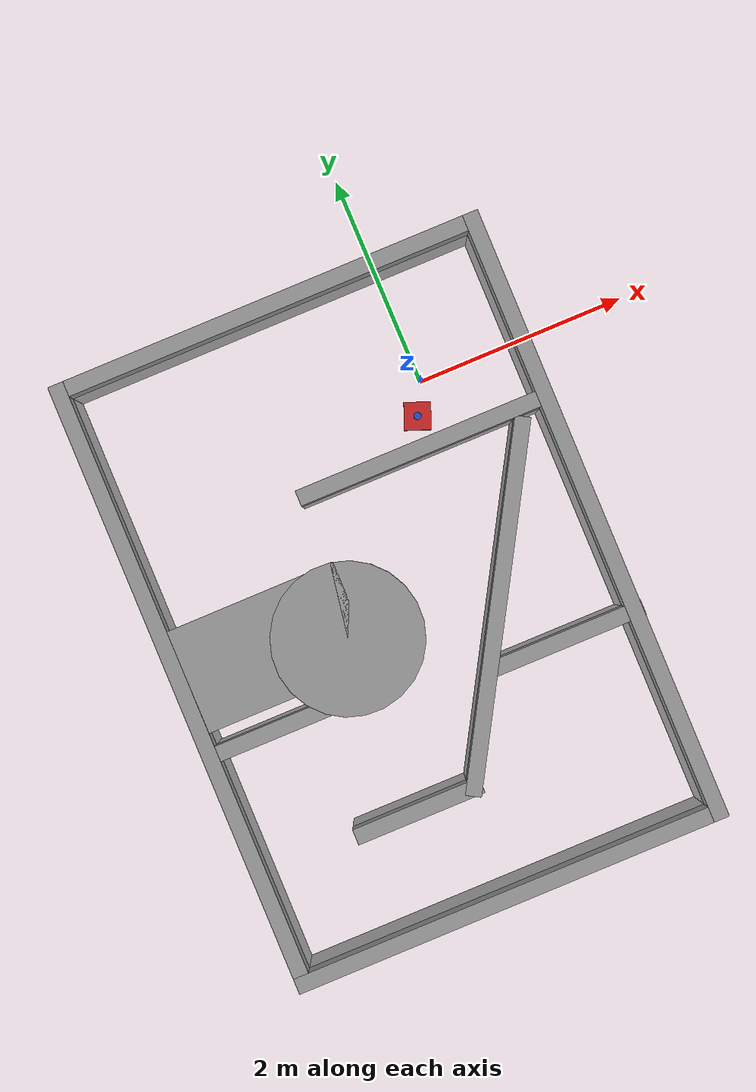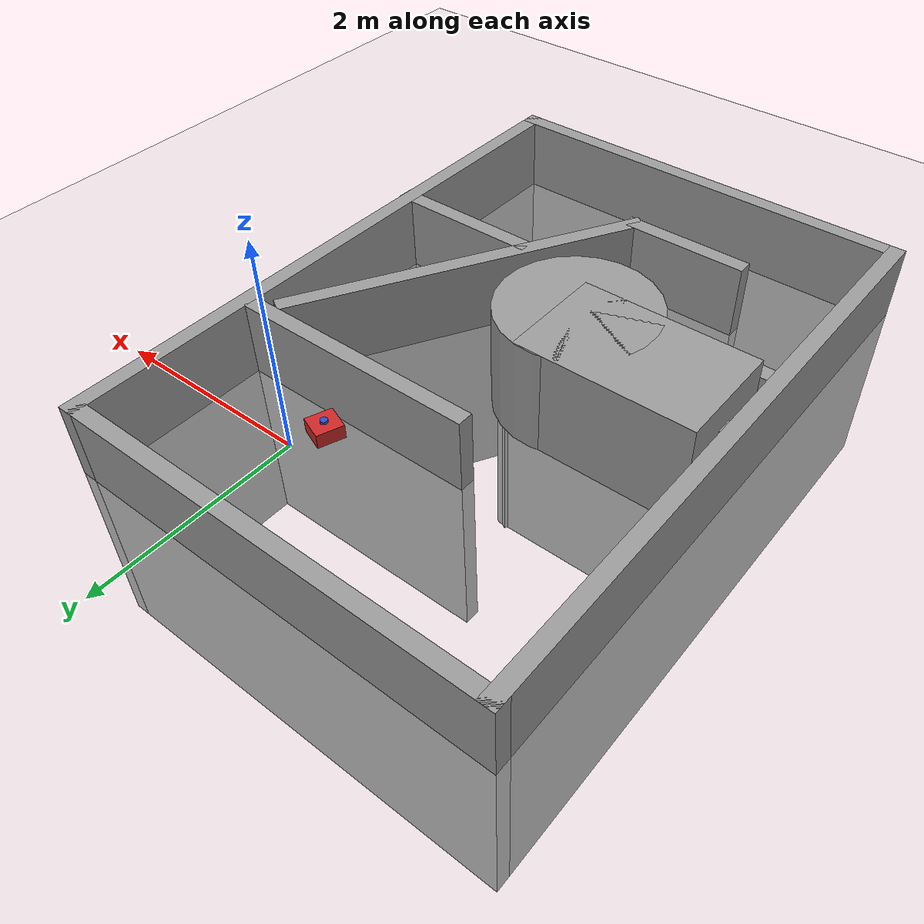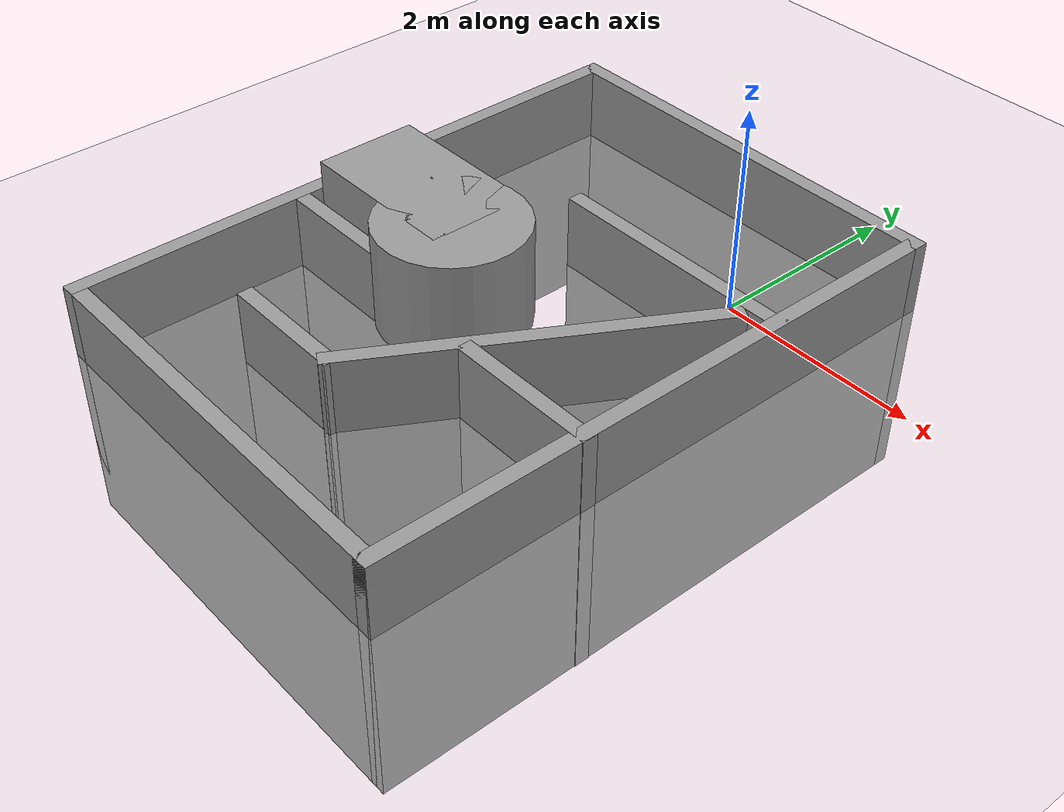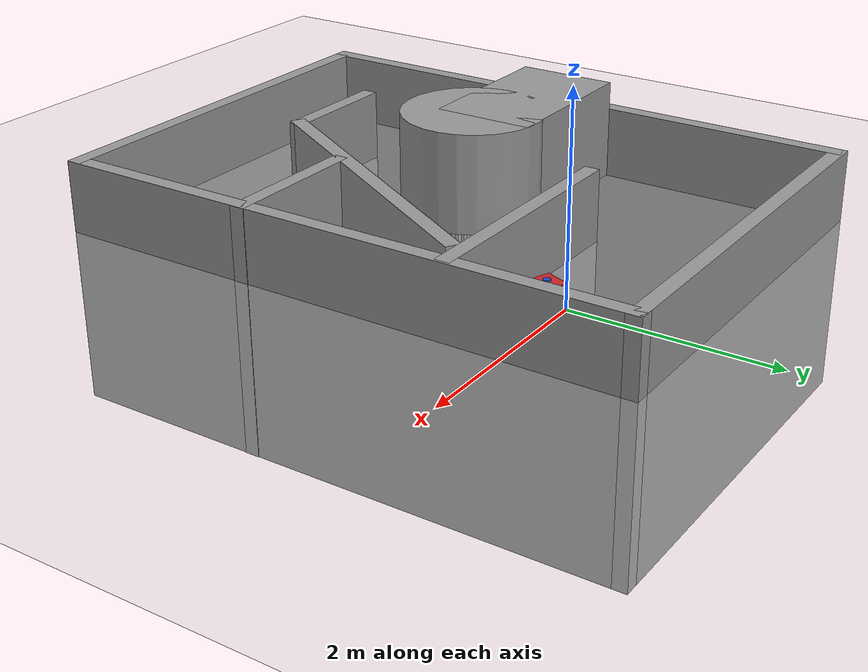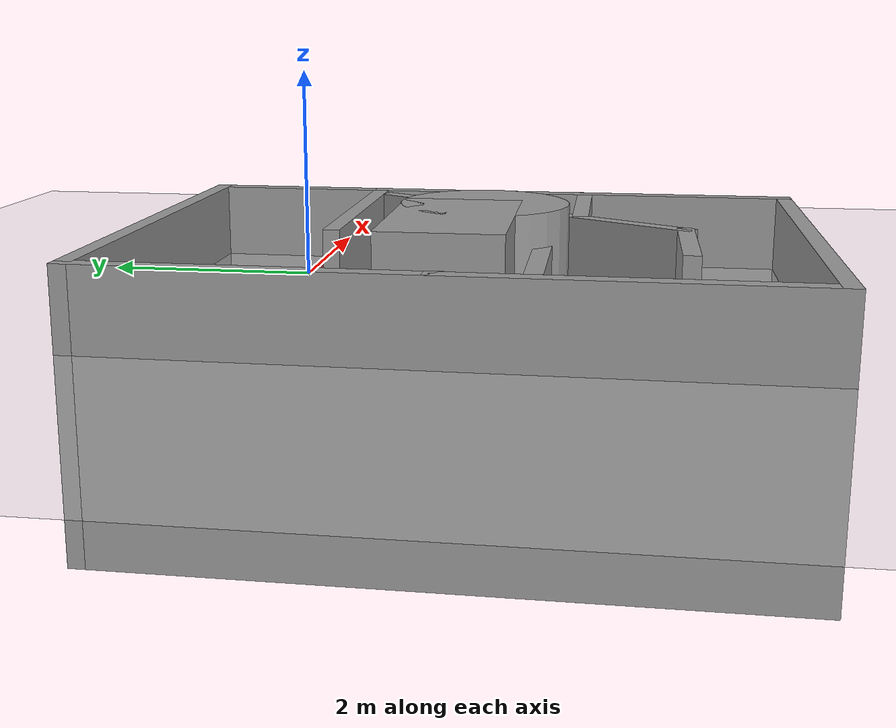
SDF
<sdf version="1.7">
 <world name="default">
  <plugin name="gazebo_ros_state" filename="libgazebo_ros_state.so"/>
  <light name="sun" type="directional">
   <pose>0 0 10 0 -0 0</pose>
   <diffuse>0.8 0.8 0.8 1</diffuse>
   <specular>0.2 0.2 0.2 1</specular>
   <attenuation>
    <range>1000</range>
    <constant>0.9</constant>
    <linear>0.01</linear>
    <quadratic>0.001</quadratic>
   </attenuation>
   <direction>-0.5 0.1 -0.9</direction>
   <spot><inner_angle>0</inner_angle><outer_angle>0</outer_angle><falloff>0</falloff></spot>
  </light>
  <model name="ground_plane">
   <static>1</static>
   <link name="link">
    <collision name="collision">
     <geometry><plane><normal>0 0 1</normal><size>100 100</size></plane></geometry>
     <surface>
      <contact><collide_bitmask>65535</collide_bitmask></contact>
      <friction><ode><mu>100</mu><mu2>50</mu2></ode></friction>
     </surface>
    </collision>
    <visual name="visual">
     <cast_shadows>0</cast_shadows>
     <geometry><plane><normal>0 0 1</normal><size>100 100</size></plane></geometry>
     <material>
      <script><uri>file://media/materials/scripts/gazebo.material</uri><name>Gazebo/Grey</name></script>
     </material>
    </visual>
   </link>
  </model>
  <gravity>0 0 -9.8</gravity>
  <magnetic_field>6e-06 2.3e-05 -4.2e-05</magnetic_field>
  <atmosphere type="adiabatic"/>
  <physics type="ode">
   <max_step_size>0.001</max_step_size>
   <real_time_factor>1</real_time_factor>
   <real_time_update_rate>1000</real_time_update_rate>
  </physics>
  <scene><ambient>0.4 0.4 0.4 1</ambient><background>0.7 0.7 0.7 1</background><shadows>1</shadows></scene>
  <audio><device>default</device></audio>
  <spherical_coordinates>
   <surface_model>EARTH_WGS84</surface_model>
   <latitude_deg>0</latitude_deg>
   <longitude_deg>0</longitude_deg>
   <elevation>0</elevation>
   <heading_deg>0</heading_deg>
  </spherical_coordinates>
  <model name="omnibot">
   <link name="base_link">
    <inertial>
     <pose>0 0 0.085583 0 -0 0</pose>
     <mass>0.6</mass>
     <inertia>
      <ixx>0.00273319</ixx>
      <ixy>0</ixy>
      <ixz>0</ixz>
      <iyy>0.00539319</iyy>
      <iyz>0</iyz>
      <izz>0.00627633</izz>
     </inertia>
    </inertial>
    <collision name="base_link_collision">
     <pose>0 0 0.072 0 -0 0</pose>
     <geometry><box><size>0.26 0.25 0.14</size></box></geometry>
    </collision>
    <collision name="base_link_fixed_joint_lump__base_laser_collision_1">
     <pose>0 0 0.1535 0 -0 0</pose>
     <geometry><cylinder><length>0.027</length><radius>0.035</radius></cylinder></geometry>
    </collision>
    <visual name="base_link_visual">
     <pose>0 0 0.072 0 -0 0</pose>
     <geometry><box><size>0.26 0.25 0.14</size></box></geometry>
     <material>
      <script><name>Gazebo/Red</name><uri>file://media/materials/scripts/gazebo.material</uri></script>
     </material>
    </visual>
    <visual name="base_link_fixed_joint_lump__base_laser_visual_1">
     <pose>0 0 0.1535 0 -0 0</pose>
     <geometry><cylinder><length>0.027</length><radius>0.035</radius></cylinder></geometry>
     <material>
      <script><name>Gazebo/Blue</name><uri>file://media/materials/scripts/gazebo.material</uri></script>
     </material>
    </visual>
    <sensor name="base_laser" type="ray">
     <visualize>0</visualize>
     <update_rate>10</update_rate>
     <ray>
      <scan>
       <horizontal>
        <samples>360</samples>
        <resolution>1</resolution>
        <min_angle>-3.14159</min_angle>
        <max_angle>3.14159</max_angle>
       </horizontal>
       <vertical><samples>1</samples><min_angle>0</min_angle><max_angle>0</max_angle></vertical>
      </scan>
      <range><min>0.15</min><max>12</max><resolution>0.01</resolution></range>
     </ray>
     <plugin name="base_laser_controller" filename="libgazebo_ros_ray_sensor.so">
      <ros><argument>~/out:=scan</argument></ros>
      <output_type>sensor_msgs/LaserScan</output_type>
      <frameName>base_laser</frameName>
     </plugin>
     <pose>0 0 0.1535 0 -0 0</pose>
    </sensor>
   </link>
   <static>0</static>
   <plugin name="gazebo_ros_control" filename="libgazebo_ros_planar_move.so">
    <commandTopic>cmd_vel</commandTopic>
    <odometryTopic>odom</odometryTopic>
    <odometryFrame>odom</odometryFrame>
    <odometryRate>20.0</odometryRate>
    <robotBaseFrame>base_footprint</robotBaseFrame>
   </plugin>
   <plugin name="gazebo_ros_state" filename="libgazebo_ros_state.so">
    <ros><namespace>/</namespace><argument>model_states:=model_states_demo</argument></ros>
    <update_rate>1.0</update_rate>
   </plugin>
   <pose>-0.143367 -0.279962 0 0 -0 1.20428</pose>
  </model>
  <model name="Untitled">
   <pose>-1.04879 -1.75581 -1.78464 0 -0 3.13872</pose>
   <link name="Wall_23">
    <collision name="Wall_23_Collision">
     <geometry><box><size>6 0.15 2.5</size></box></geometry>
     <pose>0 0 1.25 0 -0 0</pose>
    </collision>
    <visual name="Wall_23_Visual">
     <pose>0 0 1.25 0 -0 0</pose>
     <geometry><box><size>6 0.15 2.5</size></box></geometry>
     <material>
      <script><uri>file://media/materials/scripts/gazebo.material</uri><name>Gazebo/Grey</name></script>
      <ambient>1 1 1 1</ambient>
     </material>
     <meta><layer>0</layer></meta>
    </visual>
    <pose>-2.04695 0 0 0 -0 1.5708</pose>
   </link>
   <link name="Wall_24">
    <collision name="Wall_24_Collision">
     <geometry><box><size>4.25 0.15 2.5</size></box></geometry>
     <pose>0 0 1.25 0 -0 0</pose>
    </collision>
    <visual name="Wall_24_Visual">
     <pose>0 0 1.25 0 -0 0</pose>
     <geometry><box><size>4.25 0.15 2.5</size></box></geometry>
     <material>
      <script><uri>file://media/materials/scripts/gazebo.material</uri><name>Gazebo/Grey</name></script>
      <ambient>1 1 1 1</ambient>
     </material>
     <meta><layer>0</layer></meta>
    </visual>
    <pose>0.003055 2.925 0 0 -0 0</pose>
   </link>
   <link name="Wall_25">
    <collision name="Wall_25_Collision">
     <geometry><box><size>6 0.15 2.5</size></box></geometry>
     <pose>0 0 1.25 0 -0 0</pose>
    </collision>
    <visual name="Wall_25_Visual">
     <pose>0 0 1.25 0 -0 0</pose>
     <geometry><box><size>6 0.15 2.5</size></box></geometry>
     <material>
      <script><uri>file://media/materials/scripts/gazebo.material</uri><name>Gazebo/Grey</name></script>
      <ambient>1 1 1 1</ambient>
     </material>
     <meta><layer>0</layer></meta>
    </visual>
    <pose>2.05306 0 0 0 -0 -1.5708</pose>
   </link>
   <link name="Wall_26">
    <collision name="Wall_26_Collision">
     <geometry><box><size>4.25 0.15 2.5</size></box></geometry>
     <pose>0 0 1.25 0 -0 0</pose>
    </collision>
    <visual name="Wall_26_Visual">
     <pose>0 0 1.25 0 -0 0</pose>
     <geometry><box><size>4.25 0.15 2.5</size></box></geometry>
     <material>
      <script><uri>file://media/materials/scripts/gazebo.material</uri><name>Gazebo/Grey</name></script>
      <ambient>1 1 1 1</ambient>
     </material>
     <meta><layer>0</layer></meta>
    </visual>
    <pose>0.003055 -2.925 0 0 -0 3.14159</pose>
   </link>
   <link name="Wall_32">
    <collision name="Wall_32_Collision">
     <geometry><box><size>2.5 0.15 2.5</size></box></geometry>
     <pose>0 0 1.25 0 -0 0</pose>
    </collision>
    <visual name="Wall_32_Visual">
     <pose>0 0 1.25 0 -0 0</pose>
     <geometry><box><size>2.5 0.15 2.5</size></box></geometry>
     <material>
      <script><uri>file://media/materials/scripts/gazebo.material</uri><name>Gazebo/Grey</name></script>
      <ambient>1 1 1 1</ambient>
     </material>
     <meta><layer>0</layer></meta>
    </visual>
    <pose>-0.847138 -1.18793 0 0 -0 0</pose>
   </link>
   <link name="Wall_34">
    <collision name="Wall_34_Collision">
     <geometry><box><size>2.25 0.15 2.5</size></box></geometry>
     <pose>0 0 1.25 0 -0 0</pose>
    </collision>
    <visual name="Wall_34_Visual">
     <pose>0 0 1.25 0 -0 0</pose>
     <geometry><box><size>2.25 0.15 2.5</size></box></geometry>
     <material>
      <script><uri>file://media/materials/scripts/gazebo.material</uri><name>Gazebo/Grey</name></script>
      <ambient>1 1 1 1</ambient>
     </material>
     <meta><layer>0</layer></meta>
    </visual>
    <pose>0.987937 -0.050582 0 0 -0 3.14159</pose>
   </link>
   <link name="Wall_35">
    <collision name="Wall_35_Collision">
     <geometry><box><size>1 0.15 2.5</size></box></geometry>
     <pose>0 0 1.25 0 -0 0</pose>
    </collision>
    <visual name="Wall_35_Visual">
     <pose>0 0 1.25 0 -0 0</pose>
     <geometry><box><size>1 0.15 2.5</size></box></geometry>
     <material>
      <script><uri>file://media/materials/scripts/gazebo.material</uri><name>Gazebo/Grey</name></script>
      <ambient>1 1 1 1</ambient>
     </material>
     <meta><layer>0</layer></meta>
    </visual>
    <pose>0.150437 0.317479 0 0 -0 1.0472</pose>
   </link>
   <link name="Wall_36">
    <collision name="Wall_36_Collision">
     <geometry><box><size>1.75 0.15 2.5</size></box></geometry>
     <pose>0 0 1.25 0 -0 0</pose>
    </collision>
    <visual name="Wall_36_Visual">
     <pose>0 0 1.25 0 -0 0</pose>
     <geometry><box><size>1.75 0.15 2.5</size></box></geometry>
     <material>
      <script><uri>file://media/materials/scripts/gazebo.material</uri><name>Gazebo/Grey</name></script>
      <ambient>1 1 1 1</ambient>
     </material>
     <meta><layer>0</layer></meta>
    </visual>
    <pose>1.16294 0.685539 0 0 -0 0</pose>
   </link>
   <link name="Wall_38">
    <collision name="Wall_38_Collision">
     <geometry><box><size>3.5 0.15 2.5</size></box></geometry>
     <pose>0 0 1.25 0 -0 0</pose>
    </collision>
    <visual name="Wall_38_Visual">
     <pose>0 0 1.25 0 -0 0</pose>
     <geometry><box><size>3.5 0.15 2.5</size></box></geometry>
     <material>
      <script><uri>file://media/materials/scripts/gazebo.material</uri><name>Gazebo/Grey</name></script>
      <ambient>1 1 1 1</ambient>
     </material>
     <meta><layer>0</layer></meta>
    </visual>
    <pose>-0.906913 0.42136 0 0 -0 1.0472</pose>
   </link>
   <link name="Wall_39">
    <collision name="Wall_39_Collision">
     <geometry><box><size>1.25 0.15 2.5</size></box></geometry>
     <pose>0 0 1.25 0 -0 0</pose>
    </collision>
    <visual name="Wall_39_Visual">
     <pose>0 0 1.25 0 -0 0</pose>
     <geometry><box><size>1.25 0.15 2.5</size></box></geometry>
     <material>
      <script><uri>file://media/materials/scripts/gazebo.material</uri><name>Gazebo/Grey</name></script>
      <ambient>1 1 1 1</ambient>
     </material>
     <meta><layer>0</layer></meta>
    </visual>
    <pose>0.480587 1.87195 0 0 -0 0</pose>
   </link>
   <link name="Wall_41">
    <collision name="Wall_41_Collision">
     <geometry><box><size>1.5 0.15 2.5</size></box></geometry>
     <pose>0 0 1.25 0 -0 0</pose>
    </collision>
    <visual name="Wall_41_Visual">
     <pose>0 0 1.25 0 -0 0</pose>
     <geometry><box><size>1.5 0.15 2.5</size></box></geometry>
     <material>
      <script><uri>file://media/materials/scripts/gazebo.material</uri><name>Gazebo/Grey</name></script>
      <ambient>1 1 1 1</ambient>
     </material>
     <meta><layer>0</layer></meta>
    </visual>
    <pose>-1.37806 0.935971 0 0 -0 0</pose>
   </link>
   <static>1</static>
  </model>
  <model name="unit_cylinder">
   <link name="link">
    <inertial>
     <mass>1</mass>
     <inertia><ixx>0.145833</ixx><ixy>0</ixy><ixz>0</ixz><iyy>0.145833</iyy><iyz>0</iyz><izz>0.125</izz></inertia>
    </inertial>
    <visual name="visual">
     <geometry><cylinder><radius>0.712034</radius><length>1</length></cylinder></geometry>
     <material>
      <script><name>Gazebo/Grey</name><uri>file://media/materials/scripts/gazebo.material</uri></script>
      <shader type="pixel"/>
     </material>
    </visual>
    <collision name="collision">
     <geometry><cylinder><radius>0.712034</radius><length>1</length></cylinder></geometry>
     <surface>
      <friction>
       <ode><mu>1</mu><mu2>1</mu2><fdir1>0 0 0</fdir1><slip1>0</slip1><slip2>0</slip2></ode>
       <torsional>
        <coefficient>1</coefficient>
        <patch_radius>0</patch_radius>
        <surface_radius>0</surface_radius>
        <use_patch_radius>1</use_patch_radius>
        <ode><slip>0</slip></ode>
       </torsional>
      </friction>
      <bounce><restitution_coefficient>0</restitution_coefficient><threshold>1e+06</threshold></bounce>
      <contact>
       <collide_without_contact>0</collide_without_contact>
       <collide_without_contact_bitmask>1</collide_without_contact_bitmask>
       <collide_bitmask>1</collide_bitmask>
       <ode>
        <soft_cfm>0</soft_cfm>
        <soft_erp>0.2</soft_erp>
        <kp>1e+13</kp>
        <kd>1</kd>
        <max_vel>0.01</max_vel>
        <min_depth>0</min_depth>
       </ode>
       <bullet>
        <split_impulse>1</split_impulse>
        <split_impulse_penetration_threshold>-0.01</split_impulse_penetration_threshold>
        <soft_cfm>0</soft_cfm>
        <soft_erp>0.2</soft_erp>
        <kp>1e+13</kp>
        <kd>1</kd>
       </bullet>
      </contact>
     </surface>
    </collision>
   </link>
   <static>1</static>
   <pose>-1.52078 -1.92175 0.5 0 -0 0.097261</pose>
  </model>
  <model name="unit_box">
   <link name="link">
    <inertial>
     <mass>1</mass>
     <inertia>
      <ixx>0.166667</ixx>
      <ixy>0</ixy>
      <ixz>0</ixz>
      <iyy>0.166667</iyy>
      <iyz>0</iyz>
      <izz>0.166667</izz>
     </inertia>
    </inertial>
    <visual name="visual">
     <geometry><box><size>1.63623 1 1</size></box></geometry>
     <material>
      <script><name>Gazebo/Grey</name><uri>file://media/materials/scripts/gazebo.material</uri></script>
      <shader type="pixel"/>
     </material>
    </visual>
    <collision name="collision">
     <geometry><box><size>1.63623 1 1</size></box></geometry>
     <surface>
      <friction>
       <ode><mu>1</mu><mu2>1</mu2><fdir1>0 0 0</fdir1><slip1>0</slip1><slip2>0</slip2></ode>
       <torsional>
        <coefficient>1</coefficient>
        <patch_radius>0</patch_radius>
        <surface_radius>0</surface_radius>
        <use_patch_radius>1</use_patch_radius>
        <ode><slip>0</slip></ode>
       </torsional>
      </friction>
      <bounce><restitution_coefficient>0</restitution_coefficient><threshold>1e+06</threshold></bounce>
      <contact>
       <collide_without_contact>0</collide_without_contact>
       <collide_without_contact_bitmask>1</collide_without_contact_bitmask>
       <collide_bitmask>1</collide_bitmask>
       <ode>
        <soft_cfm>0</soft_cfm>
        <soft_erp>0.2</soft_erp>
        <kp>1e+13</kp>
        <kd>1</kd>
        <max_vel>0.01</max_vel>
        <min_depth>0</min_depth>
       </ode>
       <bullet>
        <split_impulse>1</split_impulse>
        <split_impulse_penetration_threshold>-0.01</split_impulse_penetration_threshold>
        <soft_cfm>0</soft_cfm>
        <soft_erp>0.2</soft_erp>
        <kp>1e+13</kp>
        <kd>1</kd>
       </bullet>
      </contact>
     </surface>
    </collision>
   </link>
   <static>1</static>
   <pose>-2.19698 -1.72798 0.5 0 -0 0</pose>
  </model>
 </world>
</sdf>
